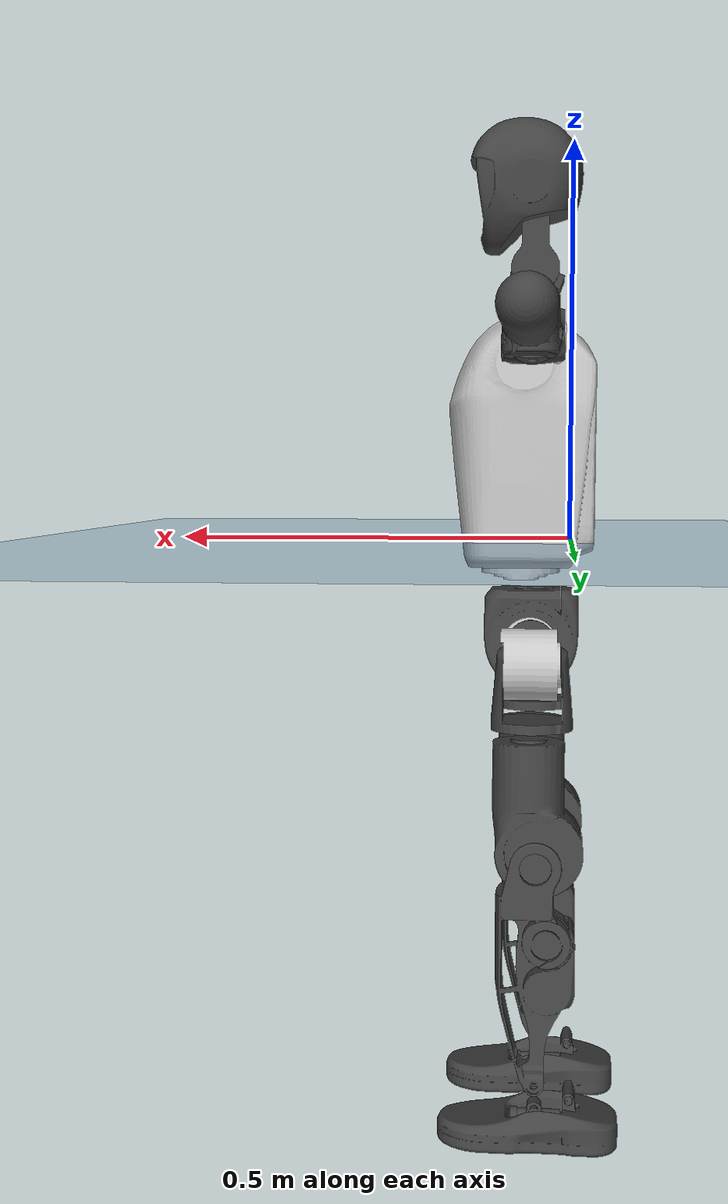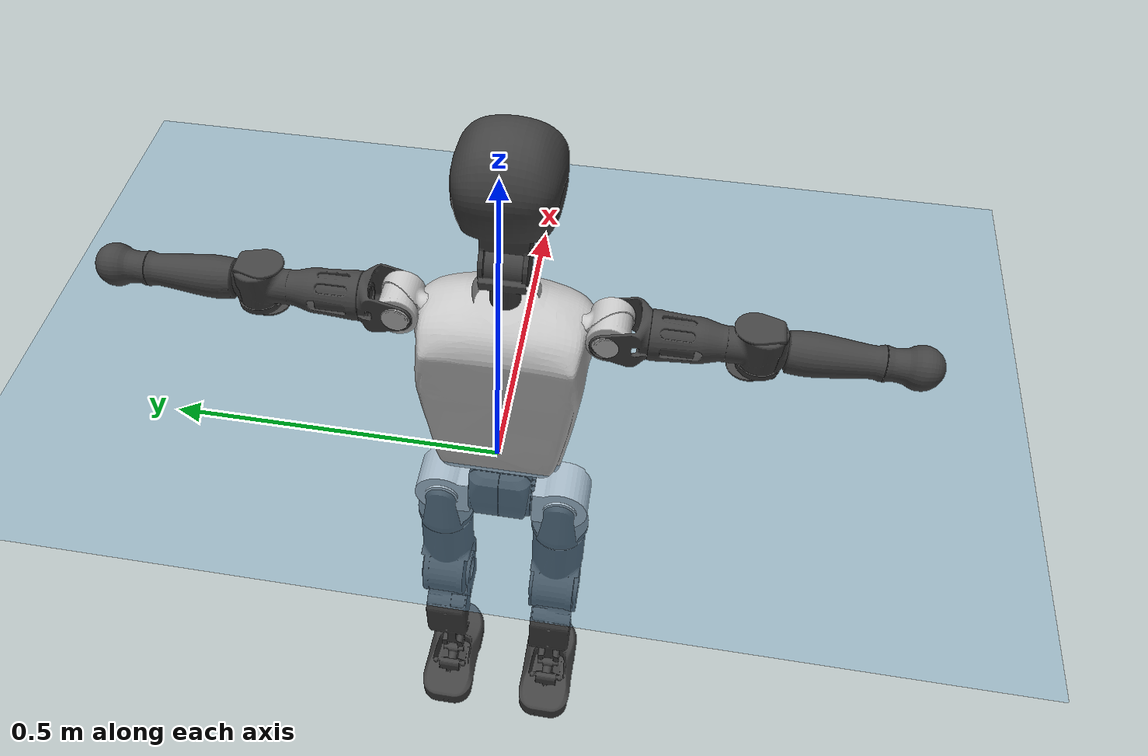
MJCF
<mujoco model="T1">
  <compiler angle="radian" assetdir="assets" balanceinertia="true" inertiafromgeom="false"/>

  <option timestep="0.005" density="1.2" viscosity="2e-05"/>

  <size nkey="1"/>

  <visual>
    <quality shadowsize="8192"/>
    <map shadowclip="0.5"/>
  </visual>

  <default>
    <default class="/">
      <joint armature="0.01" damping="0.01" frictionloss="0.1"/>
      <geom contype="0" conaffinity="0" group="1" solref="-1000 -80"/>
      <site size="0.01 0.005 0.005" group="5"/>
      <general forcelimited="true" biastype="affine" gainprm="25" biasprm="0 -25 -0.6"/>
      <default class="t1">
        <geom rgba="0.25 0.25 0.25 1"/>
        <default class="visual">
          <geom type="mesh" group="2"/>
        </default>
        <default class="collision">
          <geom group="3"/>
        </default>
        <default class="foot">
          <geom size="0.1115 0.05 0.015" type="box" condim="6" group="4" priority="1" solimp="0.015 1 0.015"/>
        </default>
        <default class="reward_collision_sphere">
          <geom group="5" rgba="1 0 0 1"/>
        </default>
      </default>
    </default>
  </default>

  <asset>
    <texture type="skybox" colorspace="auto" name="//unnamed_texture_0" builtin="gradient" rgb1="0.95 0.95 0.95" rgb2="0.95 0.95 0.95" width="100" height="600"/>
    <texture type="2d" colorspace="auto" name="texplane" builtin="checker" rgb1="0.345 0.575 0.748" rgb2="0.345 0.575 0.748" markrgb="1 1 1" width="512" height="512"/>
    <material name="MatPlane" class="/" texture="texplane" texuniform="true" texrepeat="2 2" specular="0.9"/>
    <mesh name="Trunk" class="/" file="Trunk.stl"/>
    <mesh name="H1" class="/" file="H1.stl"/>
    <mesh name="H2" class="/" file="H2.stl"/>
    <mesh name="AL1" class="/" file="AL1.stl"/>
    <mesh name="AL2" class="/" file="AL2.stl"/>
    <mesh name="AL3" class="/" file="AL3.stl"/>
    <mesh name="left_hand_link" class="/" file="left_hand_link.stl"/>
    <mesh name="AR1" class="/" file="AR1.stl"/>
    <mesh name="AR2" class="/" file="AR2.stl"/>
    <mesh name="AR3" class="/" file="AR3.stl"/>
    <mesh name="right_hand_link" class="/" file="right_hand_link.stl"/>
    <mesh name="Waist" class="/" file="Waist.stl"/>
    <mesh name="Hip_Pitch_Left" class="/" file="Hip_Pitch_Left.stl"/>
    <mesh name="Hip_Roll_Left" class="/" file="Hip_Roll_Left.stl"/>
    <mesh name="Hip_Yaw_Left" class="/" file="Hip_Yaw_Left.stl"/>
    <mesh name="Shank_Left" class="/" file="Shank_Left.stl"/>
    <mesh name="Ankle_Cross_Left" class="/" file="Ankle_Cross_Left.stl"/>
    <mesh name="left_foot_link" class="/" file="left_foot_link.stl"/>
    <mesh name="Hip_Pitch_Right" class="/" file="Hip_Pitch_Right.stl"/>
    <mesh name="Hip_Roll_Right" class="/" file="Hip_Roll_Right.stl"/>
    <mesh name="Hip_Yaw_Right" class="/" file="Hip_Yaw_Right.stl"/>
    <mesh name="Shank_Right" class="/" file="Shank_Right.stl"/>
    <mesh name="Ankle_Cross_Right" class="/" file="Ankle_Cross_Right.stl"/>
    <mesh name="right_foot_link" class="/" file="right_foot_link.stl"/>
  </asset>

  <worldbody>
    <geom name="floor" class="/" size="100 100 0.125" type="plane" group="0" material="MatPlane"/>
    <light name="toplight_shadow" class="/" pos="0 0 5" dir="0.0990148 0.0990148 -0.990148" type="directional" ambient="0.04 0.04 0.04" diffuse="0.55 0.55 0.55" specular="0.12 0.12 0.12"/>
    <light name="toplight_fill" class="/" pos="0 0 5" dir="0.0990148 0.0990148 -0.990148" type="directional" castshadow="false" ambient="0.04 0.04 0.04" diffuse="0.3 0.3 0.3" specular="0.08 0.08 0.08"/>
    <body name="trunk" childclass="t1" pos="0.000111375 -0.000866531 -9.06069e-05" quat="1 0.000111878 2.10084e-06 -0.000182511">
      <inertial pos="0.0422876 -0.000436 0.117243" quat="0.999962 0.000189314 -0.00868584 -0.000268389" mass="9.6195" diaginertia="0.0256942 0.0486396 0.0975455"/>
      <joint name="//unnamed_joint_0" type="free" armature="0" damping="0" frictionloss="0"/>
      <geom name="//unnamed_geom_1" class="visual" rgba="0.76 0.76 0.76 1" mesh="Trunk"/>
      <geom name="//unnamed_geom_2" class="collision" size="0.0701572 0.0935429 0.140314" pos="0.0464811 0 0.134059" type="box"/>
      <geom name="//unnamed_geom_3" class="reward_collision_sphere" size="0.107574" pos="0.0464811 0 0.111715"/>
      <geom name="//unnamed_geom_4" class="reward_collision_sphere" size="0.0140314" pos="0.0464811 0.0777279 0"/>
      <geom name="//unnamed_geom_5" class="reward_collision_sphere" size="0.0140314" pos="0.0464811 -0.0777279 0"/>
      <geom name="//unnamed_geom_6" class="reward_collision_sphere" size="0.0140314" pos="0.0464811 0.0978457 0.201088"/>
      <geom name="//unnamed_geom_7" class="reward_collision_sphere" size="0.0140314" pos="0.0464811 -0.0978457 0.201088"/>
      <site name="imu" pos="-0.000105612 0.000831151 -0.000818526" size="0.00935429"/>
      <camera name="track" pos="0 -1.82889 0" quat="0.707107 0.707107 0 0" mode="trackcom"/>
      <camera name="ego_camera" pos="0.0945116 0 0.469205" quat="-0.5 -0.5 0.5 0.5"/>
      <body name="H1" pos="0.0472523 -0.000257106 0.270651" quat="1 2.19762e-05 -3.60206e-06 -4.42084e-06">
        <inertial pos="-0.00169985 -0.00202246 0.0645681" quat="0.764237 -0.0129044 0.00305333 0.644799" mass="0.361289" diaginertia="6.71341e-05 0.000143031 0.000265058"/>
        <joint name="AAHead_yaw" pos="0 0 0" axis="-0.000331653 -0.00131502 0.999999" range="-1.58296 1.56348" armature="0.00922029" damping="0.0135311" frictionloss="0.0928009"/>
        <geom name="//unnamed_geom_8" class="visual" mesh="H1"/>
        <body name="H2" pos="-0.000513636 0.000227401 0.068384" quat="1 -6.36439e-06 -5.55843e-05 0.000157979">
          <inertial pos="0.00537422 0.000976077 0.110144" quat="0.988461 0.105962 -0.0745576 -0.078478" mass="0.514448" diaginertia="0.000573998 0.00124258 0.00300265"/>
          <joint name="Head_pitch" pos="0 0 0" axis="0.000182014 -1 0.000190847" stiffness="0.00216368" range="-1.20584 0.352532" armature="0.00913964" damping="0.00793474" frictionloss="0.094791"/>
          <geom name="//unnamed_geom_9" class="visual" mesh="H2"/>
          <geom name="//unnamed_geom_10" class="collision" size="0.0748343" pos="0.00774686 0 0.122887"/>
          <geom name="//unnamed_geom_11" class="reward_collision_sphere" size="0.0841886" pos="0.0154937 0 0.111715"/>
        </body>
      </body>
      <body name="AL1" pos="0.0458021 0.0970677 0.244037" quat="1 4.51007e-05 0.000493714 -1.47022e-05">
        <inertial pos="-0.00110101 0.0412724 0.000610256" quat="0.503536 0.499086 -0.502965 0.494359" mass="0.438454" diaginertia="0.000387154 0.000842547 0.000516027"/>
        <joint name="Left_Shoulder_Pitch" pos="0 0 0" axis="0.00226113 0.999997 0.000107068" range="-3.31099 1.22206" armature="0.00917272" damping="0.00366118" frictionloss="0.094751"/>
        <geom name="//unnamed_geom_12" class="visual" rgba="0.76 0.76 0.76 1" mesh="AL1"/>
        <body name="AL2" pos="0.000851515 0.044272 0.000238408" quat="1 -0.00011744 6.63796e-07 -2.16299e-05">
          <inertial pos="0.00278353 0.0344897 3.54951e-05" quat="0.488329 0.510237 -0.488191 0.512702" mass="0.130156" diaginertia="0.000111592 0.000223791 0.000309769"/>
          <joint name="Left_Shoulder_Roll" pos="0 0 0" axis="-0.999999 0.00130452 0.000613983" range="-1.56773 1.73052" armature="0.00948646" damping="0.00449821" frictionloss="0.0932289"/>
          <geom name="//unnamed_geom_13" class="visual" mesh="AL2"/>
          <body name="AL3" pos="0.000540023 0.0563769 -8.98486e-05" quat="1 -0.000122199 -6.27145e-06 8.41451e-05">
            <inertial pos="-0.000861426 0.0780615 -0.000612071" quat="0.706575 0.707638 0.000519039 -0.000212755" mass="0.836407" diaginertia="0.00356493 0.00819989 0.00108834"/>
            <joint name="Left_Elbow_Pitch" pos="0 0 0" axis="0.0013131 -0.999999 0.000421792" stiffness="0.000216934" range="-2.26544 2.26779" armature="0.00914909" damping="0.00701431" frictionloss="0.0920863"/>
            <geom name="//unnamed_geom_14" class="visual" mesh="AL3"/>
            <geom name="//unnamed_geom_15" class="collision" size="0.0280629 0.0701572" pos="0 0.0457223 0" quat="0.707105 0.707108 0 0" type="cylinder"/>
            <geom name="//unnamed_geom_16" class="reward_collision_sphere" size="0.0336754"/>
            <body name="left_hand_link" pos="0.00131497 0.134527 0.00140889" quat="1 -2.38962e-06 5.2693e-05 -5.01679e-05">
              <inertial pos="9.17381e-05 0.0998226 -0.000418402" quat="0.707606 0.706607 -0.000304668 -7.19303e-05" mass="0.270283" diaginertia="0.00227997 0.0051673 0.000376027"/>
              <joint name="Left_Elbow_Yaw" pos="0 0 0" axis="0.000118133 -0.00226112 0.999997" range="-2.43996 0.00146812" armature="0.00948865" damping="0.0100518" frictionloss="0.0894834"/>
              <geom name="//unnamed_geom_17" class="visual" mesh="left_hand_link"/>
              <geom name="//unnamed_geom_18" class="collision" size="0.0280629 0.08185" pos="0 0.118878 0" quat="0.707105 0.707108 0 0" type="cylinder"/>
              <geom name="//unnamed_geom_19" class="reward_collision_sphere" size="0.0467714"/>
              <geom name="//unnamed_geom_20" class="reward_collision_sphere" size="0.03274" pos="0 0.100589 0"/>
              <geom name="//unnamed_geom_21" class="reward_collision_sphere" size="0.03274" pos="0 0.196606 0"/>
            </body>
          </body>
        </body>
      </body>
      <body name="AR1" pos="0.0433568 -0.0961864 0.24402" quat="1 -1.29293e-05 0.000485759 -5.295e-06">
        <inertial pos="-0.000677627 -0.040778 0.00039699" quat="0.502852 0.496333 -0.506192 0.494532" mass="0.43439" diaginertia="0.000384321 0.000827199 0.000508072"/>
        <joint name="Right_Shoulder_Pitch" pos="0 0 0" axis="0.00260579 -0.999997 -0.000432498" range="-1.22631 3.29222" armature="0.00910558" damping="0.0092172" frictionloss="0.0930218"/>
        <geom name="//unnamed_geom_22" class="visual" rgba="0.76 0.76 0.76 1" mesh="AR1"/>
        <body name="AR2" pos="-0.000757128 -0.0426564 -0.000462668" quat="1 6.49797e-06 -0.000232508 -0.000199558">
          <inertial pos="0.00321816 -0.0345574 -0.000437633" quat="0.511794 0.487807 -0.51173 0.488101" mass="0.131702" diaginertia="0.000112593 0.000220424 0.000308978"/>
          <joint name="Right_Shoulder_Roll" pos="0 0 0" axis="-0.999965 -0.00571412 0.00606218" stiffness="0.00108546" range="-1.73193 1.57151" armature="0.00938155" damping="0.003599" frictionloss="0.0918365"/>
          <geom name="//unnamed_geom_23" class="visual" mesh="AR2"/>
          <body name="AR3" pos="0.000147633 -0.0560866 -9.22013e-05" quat="1 -0.000108559 0.000121185 -4.86922e-05">
            <inertial pos="-0.000704458 -0.0780474 0.000538547" quat="0.709834 0.704363 0.00204314 0.00220928" mass="0.839061" diaginertia="0.00363677 0.00827355 0.00108283"/>
            <joint name="Right_Elbow_Pitch" pos="0 0 0" axis="0.000408625 0.999993 0.00384838" range="-2.27452 2.28352" armature="0.00969849" damping="0.00675608" frictionloss="0.0942612"/>
            <geom name="//unnamed_geom_24" class="visual" mesh="AR3"/>
            <geom name="//unnamed_geom_25" class="collision" size="0.0280629 0.0701572" pos="0 -0.0457223 0" quat="0.707105 0.707108 0 0" type="cylinder"/>
            <geom name="//unnamed_geom_26" class="reward_collision_sphere" size="0.0336754"/>
            <body name="right_hand_link" pos="-0.000337398 -0.134518 -0.000287318" quat="1 9.01369e-06 -4.30739e-06 1.45976e-05">
              <inertial pos="0.000478575 -0.100902 0.000576138" quat="0.705525 0.708685 0.00042175 0.000902035" mass="0.269325" diaginertia="0.00229049 0.00524776 0.000374043"/>
              <joint name="Right_Elbow_Yaw" pos="0 0 0" axis="-0.000414621 -0.000427613 1" stiffness="0.00177489" range="0.00460046 2.43859" armature="0.00923399" damping="0.00768963" frictionloss="0.0921078"/>
              <geom name="//unnamed_geom_27" class="visual" mesh="right_hand_link"/>
              <geom name="//unnamed_geom_28" class="collision" size="0.0280629 0.08185" pos="0 -0.118878 0" quat="0.707105 0.707108 0 0" type="cylinder"/>
              <geom name="//unnamed_geom_29" class="reward_collision_sphere" size="0.0467714"/>
              <geom name="//unnamed_geom_30" class="reward_collision_sphere" size="0.03274" pos="0 -0.100589 0"/>
              <geom name="//unnamed_geom_31" class="reward_collision_sphere" size="0.03274" pos="0 -0.196606 0"/>
            </body>
          </body>
        </body>
      </body>
      <body name="Waist" pos="0.0483752 -0.000871627 -0.129677" quat="1 4.07537e-07 -8.98769e-05 6.18111e-05">
        <inertial pos="0.000571626 -0.000566693 0.00787258" quat="0.983722 2.84533e-05 -0.17968 0.00265745" mass="2.12394" diaginertia="0.00152233 0.0034034 0.00838662"/>
        <joint name="Waist" pos="0 0 0" axis="-0.00164526 0.000100377 0.999999" stiffness="0.000341493" range="-1.55392 1.55755" armature="0.00947021" damping="0.00100188" frictionloss="0.0941534"/>
        <geom name="//unnamed_geom_32" class="visual" mesh="Waist"/>
        <body name="Hip_Pitch_Left" pos="0.000856651 0.097119 -0.000727958" quat="1 -8.02247e-05 0.000207633 0.000283947">
          <inertial pos="0.00137702 -0.00684023 -0.0208187" quat="0.97559 0.219065 0.0152994 0.00107401" mass="0.835522" diaginertia="0.00049889 0.00093094 0.00219321"/>
          <joint name="Left_Hip_Pitch" pos="0 0 0" axis="0.00525853 0.999986 -9.52384e-05" range="-1.81272 1.57313" armature="0.00932802" damping="0.0124173" frictionloss="0.0958832"/>
          <geom name="//unnamed_geom_33" class="visual" rgba="0.76 0.76 0.76 1" mesh="Hip_Pitch_Left"/>
          <body name="Hip_Roll_Left" pos="-0.000779806 0.000461024 -0.0232885" quat="1 -1.82388e-05 -7.8207e-05 -5.67029e-05">
            <inertial pos="0.00124089 -0.000492843 -0.0598185" quat="0.706185 -0.00438031 -0.00674236 0.707982" mass="0.312927" diaginertia="0.000478729 0.000950614 0.000887307"/>
            <joint name="Left_Hip_Roll" pos="0 0 0" axis="-1 -0.000530031 0.000538031" range="-1.5859 0.200575" armature="0.00937738" damping="0.00524319" frictionloss="0.0974321"/>
            <geom name="//unnamed_geom_34" class="visual" mesh="Hip_Roll_Left"/>
            <geom name="//unnamed_geom_35" class="reward_collision_sphere" size="0.0514486"/>
            <body name="Hip_Yaw_Left" pos="0.00110047 0.000361984 -0.0919053" quat="1 -6.09825e-06 1.29197e-05 -4.18972e-05">
              <inertial pos="-0.00473274 -0.000320143 -0.0996992" quat="0.696675 -0.0340309 -0.0312978 0.715896" mass="1.79633" diaginertia="0.00725803 0.0162648 0.00452425"/>
              <joint name="Left_Hip_Yaw" pos="0 0 0" axis="-0.00351746 0.00365902 -0.999987" range="-1.01168 0.990413" armature="0.00969659" damping="0.0121952" frictionloss="0.0949646"/>
              <geom name="//unnamed_geom_36" class="visual" mesh="Hip_Yaw_Left"/>
              <geom name="//unnamed_geom_37" class="collision" size="0.0467714 0.0748343" type="cylinder"/>
              <body name="Shank_Left" pos="-0.00992318 1.49016e-05 -0.150873" quat="1 -1.00025e-05 0.000111457 -0.000109903">
                <inertial pos="-0.00541685 -7.89653e-05 -0.138873" quat="0.997527 0.00078781 -0.0232303 0.0663287" mass="1.40176" diaginertia="0.00953387 0.0220001 0.00320085"/>
                <joint name="Left_Knee_Pitch" pos="0 0 0" axis="0.000774125 0.999998 0.00193041" range="-0.0105634 2.34012" armature="0.00898114" damping="0.00661398" frictionloss="0.0942623"/>
                <geom name="//unnamed_geom_38" class="visual" mesh="Shank_Left"/>
                <geom name="//unnamed_geom_39" class="collision" size="0.0467714 0.0701572" pos="0 0 -0.134059" type="cylinder"/>
                <geom name="//unnamed_geom_40" class="reward_collision_sphere" size="0.0608029"/>
                <body name="Ankle_Cross_Left" pos="-0.000392434 -5.94878e-05 -0.312729" quat="1 0.000104101 5.47884e-05 8.8359e-05">
                  <inertial pos="-0.0028559 0.000335907 -0.00919988" quat="0.442205 0.551067 0.551795 0.44306" mass="0.0600639" diaginertia="8.07678e-06 1.64713e-05 1.97564e-05"/>
                  <joint name="Left_Ankle_Pitch" pos="0 0 0" axis="0.00122803 0.999991 -0.00399115" range="-0.869797 0.356072" armature="0.00937113" damping="0.00759949" frictionloss="0.0925533"/>
                  <geom name="//unnamed_geom_41" class="visual" mesh="Ankle_Cross_Left"/>
                  <body name="left_foot_link" pos="-0.00126401 -0.000161243 -0.01347" quat="1 -8.78002e-05 -0.000313619 -0.000310326">
                    <inertial pos="-9.84863e-05 0.000217615 -0.0095955" quat="-0.000187263 0.62091 0.000154815 0.783882" mass="0.566456" diaginertia="0.000759932 0.00152995 0.00383869"/>
                    <joint name="Left_Ankle_Roll" pos="0 0 0" axis="-0.999997 -0.002282 0.00121705" range="-0.424373 0.431274" armature="0.0093985" damping="0.0106217" frictionloss="0.0933881"/>
                    <geom name="//unnamed_geom_42" class="visual" mesh="left_foot_link"/>
                    <geom name="left_foot" class="foot" size="0.103814 0.0497515 0.0139791" pos="0.00774686 0 -0.0167573"/>
                    <geom name="//unnamed_geom_44" class="reward_collision_sphere" size="0.0486423" pos="0.00774686 0 -0.0167573"/>
                    <geom name="//unnamed_geom_45" class="reward_collision_sphere" size="0.0280629" pos="0.0735951 -0.0210322 -0.0167573"/>
                    <geom name="//unnamed_geom_46" class="reward_collision_sphere" size="0.0280629" pos="-0.054228 -0.0210322 -0.0167573"/>
                    <site name="left_foot" class="foot" pos="0.00774686 0 -0.0167573" size="0.00935429"/>
                  </body>
                </body>
              </body>
            </body>
          </body>
        </body>
        <body name="Hip_Pitch_Right" pos="0.000129002 -0.0964084 -0.000310202" quat="1 -0.000167846 -0.000179053 -0.000170271">
          <inertial pos="0.000636121 0.00653979 -0.0195617" quat="0.973748 -0.227109 0.0149757 -0.00340909" mass="0.840232" diaginertia="0.000506282 0.00094016 0.00216663"/>
          <joint name="Right_Hip_Pitch" pos="0 0 0" axis="-0.00189112 -0.999998 0.00100311" range="-1.58902 1.80616" armature="0.0092761" damping="0.00344107" frictionloss="0.0946565"/>
          <geom name="//unnamed_geom_47" class="visual" rgba="0.76 0.76 0.76 1" mesh="Hip_Pitch_Right"/>
          <body name="Hip_Roll_Right" pos="-0.000288128 0.000418334 -0.0228294" quat="1 -5.77028e-05 1.18384e-05 -4.88606e-05">
            <inertial pos="0.000854758 -0.000117587 -0.0605797" quat="0.70715 -0.00633365 -0.00599273 0.70701" mass="0.314968" diaginertia="0.000481794 0.000969041 0.000896852"/>
            <joint name="Right_Hip_Roll" pos="0 0 0" axis="-1 -7.07023e-05 -0.000920841" range="-0.219161 1.5734" armature="0.0092565" damping="0.00941569" frictionloss="0.0908019"/>
            <geom name="//unnamed_geom_48" class="visual" mesh="Hip_Roll_Right"/>
            <geom name="//unnamed_geom_49" class="reward_collision_sphere" size="0.0514486"/>
            <body name="Hip_Yaw_Right" pos="-0.000226805 -0.000356164 -0.0920884" quat="1 4.95257e-05 3.27625e-05 -7.59633e-05">
              <inertial pos="-0.00473887 0.000131618 -0.0993745" quat="0.714402 -0.0313132 -0.0338423 0.698215" mass="1.76532" diaginertia="0.00712195 0.0161313 0.00449441"/>
              <joint name="Right_Hip_Yaw" pos="0 0 0" axis="-0.00127227 -0.00085312 -0.999999" range="-0.997961 1.00215" armature="0.00938865" damping="0.00524623" frictionloss="0.09377"/>
              <geom name="//unnamed_geom_50" class="visual" mesh="Hip_Yaw_Right"/>
              <geom name="//unnamed_geom_51" class="collision" size="0.0467714 0.0748343" type="cylinder"/>
              <body name="Shank_Right" pos="-0.011015 1.91664e-05 -0.14967" quat="1 -5.22591e-06 8.39219e-07 3.3412e-06">
                <inertial pos="-0.00568169 -3.92347e-05 -0.136153" quat="0.999269 -0.00165867 -0.0240174 -0.0296834" mass="1.44513" diaginertia="0.00972712 0.0220684 0.00339963"/>
                <joint name="Right_Knee_Pitch" pos="0 0 0" axis="-0.00536472 -0.99998 -0.00321294" stiffness="0.00112251" range="-2.34315 0.000404343" armature="0.00946124" damping="0.00709953" frictionloss="0.0975426"/>
                <geom name="//unnamed_geom_52" class="visual" mesh="Shank_Right"/>
                <geom name="//unnamed_geom_53" class="collision" size="0.0467714 0.0701572" pos="0 0 -0.134059" type="cylinder"/>
                <geom name="//unnamed_geom_54" class="reward_collision_sphere" size="0.0608029"/>
                <body name="Ankle_Cross_Right" pos="0.00118426 0.000266083 -0.31242" quat="1 -1.539e-05 3.19847e-05 -6.70623e-06">
                  <inertial pos="-0.00247606 0.000934519 -0.00859105" quat="0.445509 0.551011 0.548272 0.444192" mass="0.0600685" diaginertia="8.05988e-06 1.63103e-05 1.96525e-05"/>
                  <joint name="Right_Ankle_Pitch" pos="0 0 0" axis="-2.03848e-05 -0.999999 -0.00131836" range="-0.335938 0.850997" armature="0.00913268" damping="0.00791259" frictionloss="0.0928731"/>
                  <geom name="//unnamed_geom_55" class="visual" mesh="Ankle_Cross_Right"/>
                  <body name="right_foot_link" pos="-0.00010827 -0.0013272 -0.0138419" quat="1 1.00393e-05 1.83356e-05 2.7071e-05">
                    <inertial pos="-0.000207919 0.000128196 -0.00978767" quat="0.00107068 0.620991 0.000646375 0.783817" mass="0.558363" diaginertia="0.000751359 0.00154219 0.00379051"/>
                    <joint name="Right_Ankle_Roll" pos="0 0 0" axis="-1 0.000702747 6.02492e-05" range="-0.447803 0.437341" armature="0.00949129" damping="0.0101041" frictionloss="0.0968322"/>
                    <geom name="//unnamed_geom_56" class="visual" mesh="right_foot_link"/>
                    <geom name="right_foot" class="foot" size="0.101829 0.0444188 0.0145601" pos="0.00774686 0 -0.0167573"/>
                    <geom name="//unnamed_geom_58" class="reward_collision_sphere" size="0.0374171"/>
                    <geom name="//unnamed_geom_59" class="reward_collision_sphere" size="0.0280629" pos="0.00774686 0 -0.0167573"/>
                    <geom name="//unnamed_geom_60" class="reward_collision_sphere" size="0.0280629" pos="0.0735951 0.0210322 -0.0167573"/>
                    <geom name="//unnamed_geom_61" class="reward_collision_sphere" size="0.0280629" pos="-0.054228 0.0210322 -0.0167573"/>
                    <site name="right_foot" class="foot" pos="0.00774686 0 -0.0167573" size="0.00935429"/>
                  </body>
                </body>
              </body>
            </body>
          </body>
        </body>
      </body>
    </body>
  </worldbody>

  <contact>
    <pair class="/" geom1="floor" geom2="left_foot" name="//unnamed_contact_0"/>
    <pair class="/" geom1="floor" geom2="right_foot" name="//unnamed_contact_1"/>
  </contact>

  <actuator>
    <general name="AAHead_yaw" class="/" joint="AAHead_yaw" forcerange="-6.53686 6.53686" gainprm="22.8371" biasprm="0 -22.8371 -0.553364"/>
    <general name="Head_pitch" class="/" joint="Head_pitch" forcerange="-6.4298 6.4298" gainprm="22.8371" biasprm="0 -22.8371 -0.553364"/>
    <general name="Left_Shoulder_Pitch" class="/" joint="Left_Shoulder_Pitch" forcerange="-16.9922 16.9922" gainprm="22.8371" biasprm="0 -22.8371 -0.553364"/>
    <general name="Left_Shoulder_Roll" class="/" joint="Left_Shoulder_Roll" forcerange="-17.0248 17.0248" gainprm="22.8371" biasprm="0 -22.8371 -0.553364"/>
    <general name="Left_Elbow_Pitch" class="/" joint="Left_Elbow_Pitch" forcerange="-17.1652 17.1652" gainprm="22.8371" biasprm="0 -22.8371 -0.553364"/>
    <general name="Left_Elbow_Yaw" class="/" joint="Left_Elbow_Yaw" forcerange="-16.9184 16.9184" gainprm="22.8371" biasprm="0 -22.8371 -0.553364"/>
    <general name="Right_Shoulder_Pitch" class="/" joint="Right_Shoulder_Pitch" forcerange="-17.2813 17.2813" gainprm="22.8371" biasprm="0 -22.8371 -0.553364"/>
    <general name="Right_Shoulder_Roll" class="/" joint="Right_Shoulder_Roll" forcerange="-16.3228 16.3228" gainprm="22.8371" biasprm="0 -22.8371 -0.553364"/>
    <general name="Right_Elbow_Pitch" class="/" joint="Right_Elbow_Pitch" forcerange="-16.8986 16.8986" gainprm="22.8371" biasprm="0 -22.8371 -0.553364"/>
    <general name="Right_Elbow_Yaw" class="/" joint="Right_Elbow_Yaw" forcerange="-16.593 16.593" gainprm="22.8371" biasprm="0 -22.8371 -0.553364"/>
    <general name="Waist" class="/" joint="Waist" forcerange="-28.1541 28.1541" gainprm="22.8371" biasprm="0 -22.8371 -0.553364"/>
    <general name="Left_Hip_Pitch" class="/" joint="Left_Hip_Pitch" forcerange="-42.0403 42.0403" gainprm="22.8371" biasprm="0 -22.8371 -0.553364"/>
    <general name="Left_Hip_Roll" class="/" joint="Left_Hip_Roll" forcerange="-28.3132 28.3132" gainprm="22.8371" biasprm="0 -22.8371 -0.553364"/>
    <general name="Left_Hip_Yaw" class="/" joint="Left_Hip_Yaw" forcerange="-28.9752 28.9752" gainprm="22.8371" biasprm="0 -22.8371 -0.553364"/>
    <general name="Left_Knee_Pitch" class="/" joint="Left_Knee_Pitch" forcerange="-55.8806 55.8806" gainprm="22.8371" biasprm="0 -22.8371 -0.553364"/>
    <general name="Left_Ankle_Pitch" class="/" joint="Left_Ankle_Pitch" forcerange="-19.2933 19.2933" gainprm="22.8371" biasprm="0 -22.8371 -0.553364"/>
    <general name="Left_Ankle_Roll" class="/" joint="Left_Ankle_Roll" forcerange="-14.4315 14.4315" gainprm="22.8371" biasprm="0 -22.8371 -0.553364"/>
    <general name="Right_Hip_Pitch" class="/" joint="Right_Hip_Pitch" forcerange="-42.6426 42.6426" gainprm="22.8371" biasprm="0 -22.8371 -0.553364"/>
    <general name="Right_Hip_Roll" class="/" joint="Right_Hip_Roll" forcerange="-28.046 28.046" gainprm="22.8371" biasprm="0 -22.8371 -0.553364"/>
    <general name="Right_Hip_Yaw" class="/" joint="Right_Hip_Yaw" forcerange="-27.1904 27.1904" gainprm="22.8371" biasprm="0 -22.8371 -0.553364"/>
    <general name="Right_Knee_Pitch" class="/" joint="Right_Knee_Pitch" forcerange="-55.873 55.873" gainprm="22.8371" biasprm="0 -22.8371 -0.553364"/>
    <general name="Right_Ankle_Pitch" class="/" joint="Right_Ankle_Pitch" forcerange="-18.5913 18.5913" gainprm="22.8371" biasprm="0 -22.8371 -0.553364"/>
    <general name="Right_Ankle_Roll" class="/" joint="Right_Ankle_Roll" forcerange="-14.2017 14.2017" gainprm="22.8371" biasprm="0 -22.8371 -0.553364"/>
  </actuator>

  <sensor>
    <gyro site="imu" name="imu_angular_velocity"/>
    <velocimeter site="imu" name="imu_linear_velocity"/>
    <framelinvel objtype="site" objname="left_foot" name="left_foot_global_linear_velocity"/>
    <framelinvel objtype="site" objname="right_foot" name="right_foot_global_linear_velocity"/>
  </sensor>

  <keyframe>
    <key name="home" qpos="0 0 0.6385 1 0 0 0 0 0 0 1.4 0 -0.4 0 -1.4 0 0.4 0 -0.4 0 0 0.8 -0.4 0 0.4 0 0 -0.8 0.4 0"/>
  </keyframe>
</mujoco>
